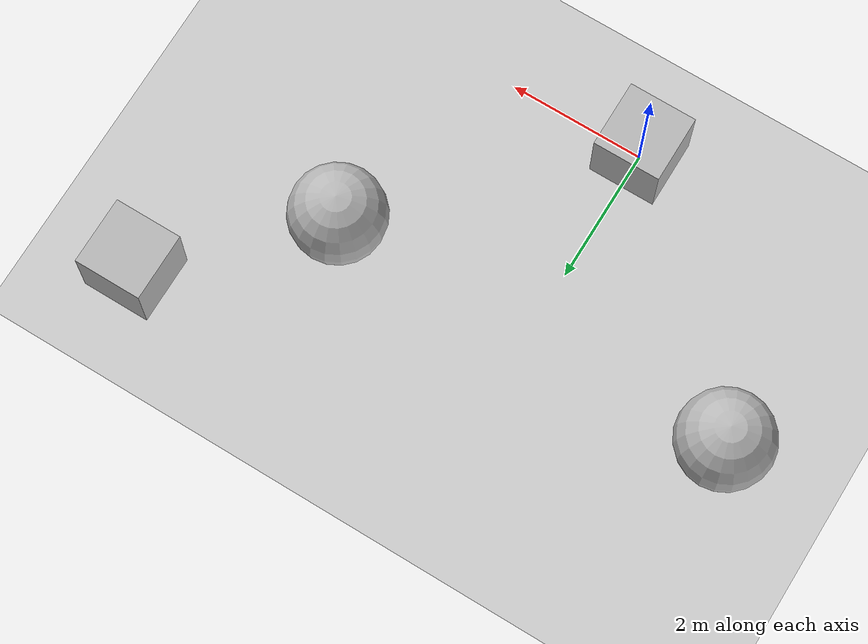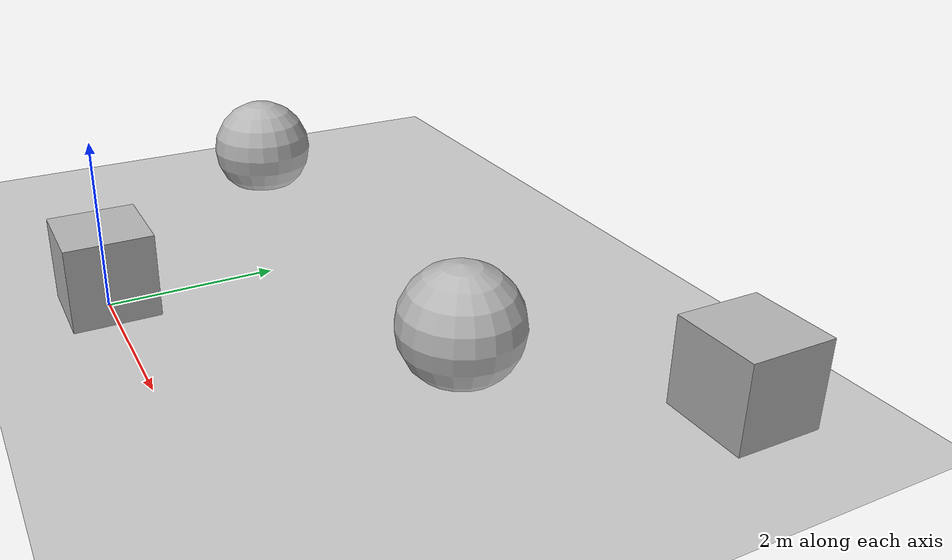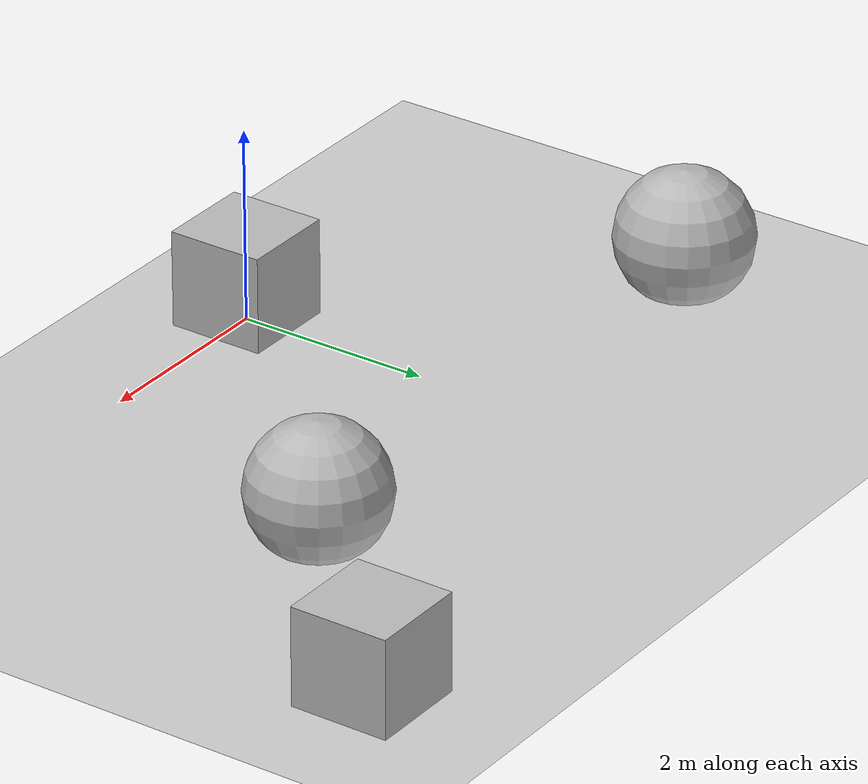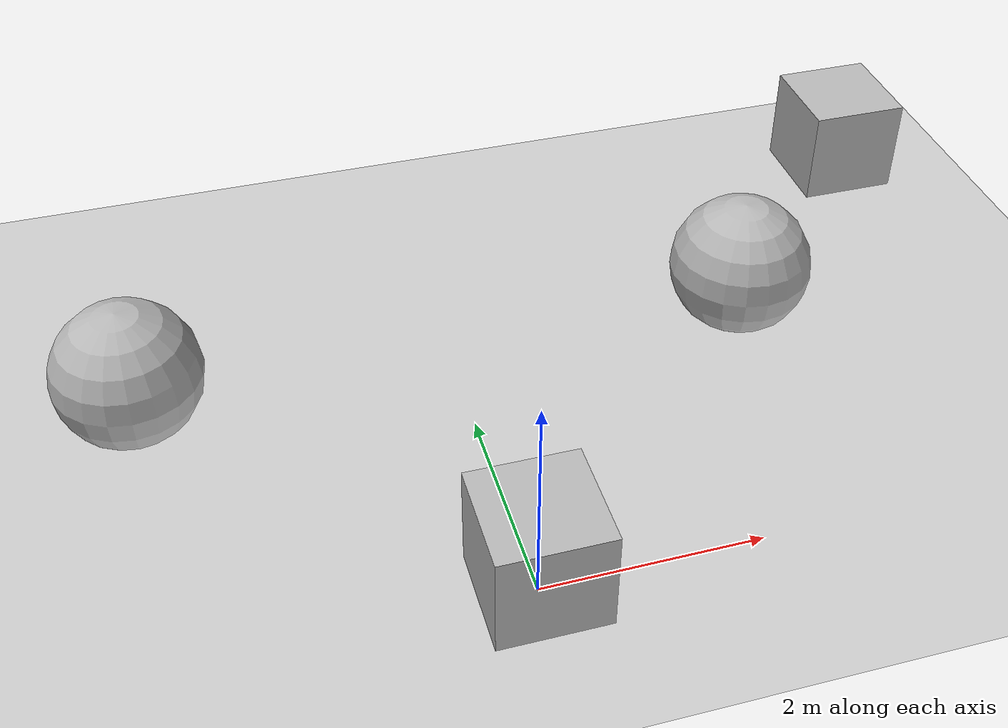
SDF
<?xml version="1.0"?>
<sdf version="1.4">
  <world name="default">
    <include>
      <uri>model://ground_plane</uri>
    </include>

    <include>
      <uri>model://sun</uri>
    </include>

    <model name="box1">
      <pose>0 0 0.5 0 0 0</pose>
      <link name="link">
        <collision name="collision">
          <geometry>
            <box>
              <size>1 1 1</size>
            </box>
          </geometry>
        </collision>

        <visual name="visual">
          <geometry>
            <box>
              <size>1 1 1</size>
            </box>
          </geometry>
        </visual>
      </link>
    </model>

    <model name="box2">
      <pose>5 5 0.5 0 0 0</pose>
      <link name="link">
        <collision name="collision">
          <geometry>
            <box>
              <size>1 1 1</size>
            </box>
          </geometry>
        </collision>

        <visual name="visual">
          <geometry>
            <box>
              <size>1 1 1</size>
            </box>
          </geometry>
        </visual>
      </link>
    </model>

    <model name="sphere1">
      <pose>3 3 0.5 0 0 0</pose>
      <link name="link">
        <collision name="collision">
          <geometry>
            <sphere>
              <radius>0.7</radius>
            </sphere>
          </geometry>
        </collision>

        <visual name="visual">
          <geometry>
            <sphere>
              <radius>0.7</radius>
            </sphere>
          </geometry>
        </visual>
      </link>
    </model>

    <model name="sphere2">
      <pose>-3 3 0.5 0 0 0</pose>
      <link name="link">
        <collision name="collision">
          <geometry>
            <sphere>
              <radius>0.7</radius>
            </sphere>
          </geometry>
        </collision>

        <visual name="visual">
          <geometry>
            <sphere>
              <radius>0.7</radius>
            </sphere>
          </geometry>
        </visual>
      </link>
    </model>

  </world>
</sdf>
